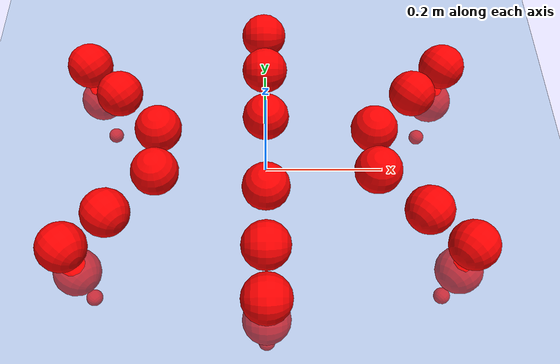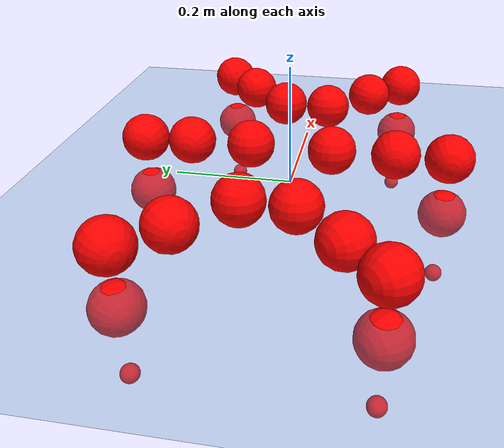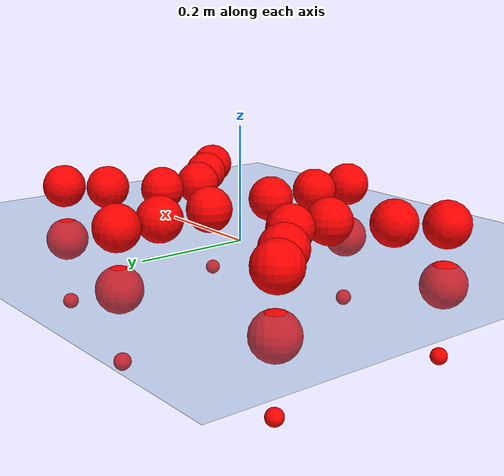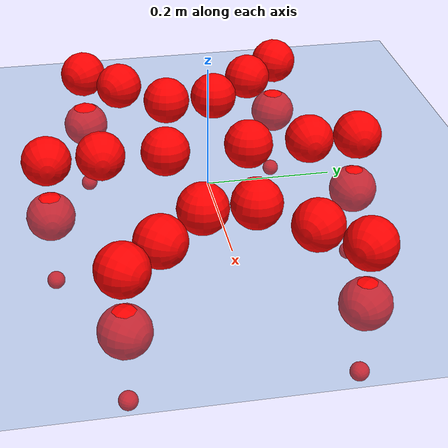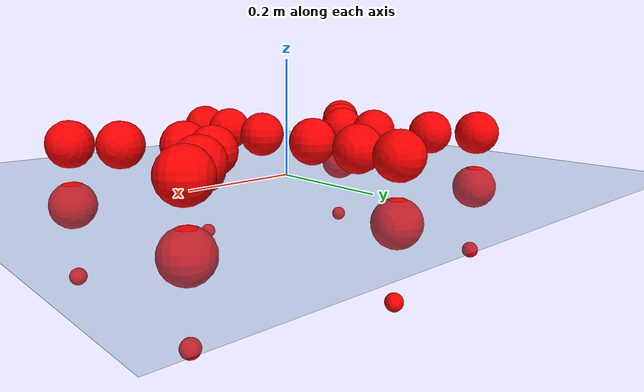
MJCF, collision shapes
<mujoco model="Golem">
  <compiler angle="radian" assetdir="assets" balanceinertia="true" inertiafromgeom="false"/>

  <option timestep="0.005" density="1.2" viscosity="2e-05"/>

  <size nkey="1"/>

  <visual>
    <quality shadowsize="8192"/>
    <map shadowclip="0.5"/>
  </visual>

  <default>
    <default class="/">
      <joint armature="0.01" damping="0.01" frictionloss="0.01"/>
      <geom contype="0" conaffinity="0" group="1" solref="-1000 -80"/>
      <site size="0.01 0.005 0.005" group="5"/>
      <general forcelimited="true" biastype="affine" gainprm="25" biasprm="0 -25 -0.5"/>
      <default class="visual">
        <geom type="mesh" group="2"/>
      </default>
      <default class="collision">
        <geom group="3"/>
      </default>
      <default class="foot">
        <geom size="0.01 0 0" condim="6" group="4" priority="1" solimp="0.015 1 0.01"/>
      </default>
      <default class="reward_collision_sphere">
        <geom group="5" rgba="1 0 0 1"/>
      </default>
    </default>
  </default>

  <asset>
    <texture type="skybox" colorspace="auto" name="//unnamed_texture_0" builtin="gradient" rgb1="0.95 0.95 0.95" rgb2="0.95 0.95 0.95" width="100" height="600"/>
    <texture type="2d" colorspace="auto" name="texplane" builtin="checker" rgb1="0.345 0.575 0.748" rgb2="0.345 0.575 0.748" markrgb="1 1 1" width="512" height="512"/>
    <material name="MatPlane" class="/" texture="texplane" texuniform="true" texrepeat="2 2" specular="0.9"/>
    <mesh name="body" class="/" file="body.stl" scale="0.001 0.001 0.001"/>
    <mesh name="coxa" class="/" file="coxa.stl" scale="0.001 0.001 0.001"/>
    <mesh name="femur" class="/" file="femur.stl" scale="0.001 0.001 0.001"/>
    <mesh name="tibia" class="/" file="tibia.stl" scale="0.001 0.001 0.001"/>
    <mesh name="tarsus" class="/" file="tarsus.stl" scale="0.001 0.001 0.001"/>
  </asset>

  <worldbody>
    <geom name="floor" class="/" size="100 100 0.125" type="plane" group="0" material="MatPlane"/>
    <light name="toplight_shadow" class="/" pos="0 0 5" dir="0.0990148 0.0990148 -0.990148" type="directional" ambient="0.04 0.04 0.04" diffuse="0.55 0.55 0.55" specular="0.12 0.12 0.12"/>
    <light name="toplight_fill" class="/" pos="0 0 5" dir="0.0990148 0.0990148 -0.990148" type="directional" castshadow="false" ambient="0.04 0.04 0.04" diffuse="0.3 0.3 0.3" specular="0.08 0.08 0.08"/>
    <body name="trunk" pos="0.000805036 -4.30444e-05 0.000869837" quat="1 -0.000100235 9.02162e-05 0.000201835">
      <inertial pos="-0.000463807 -0.000428315 -0.00402371" quat="0.999998 -0.00123032 -0.00157594 0.000791258" mass="3.55649" diaginertia="0.0205375 0.00275451 0.0112294"/>
      <joint name="//unnamed_joint_0" type="free"/>
      <geom name="//unnamed_geom_1" class="/" pos="0 0 0.0653289" quat="1 0 0 0" type="mesh" rgba="0.9 0.9 0.9 1" mesh="body"/>
      <site name="imu" class="/" pos="0.146169 0.000858299 0.106076" size="0.00982098"/>
      <camera name="track" class="/" pos="0 -1.54392 0" quat="0.707107 0.707107 0 0" mode="trackcom"/>
      <camera name="ego_camera" class="/" pos="0.149964 0 0.102076" quat="-0.5 -0.5 0.5 0.5"/>
      <body name="coxa_RR" pos="-0.204954 -0.0645907 0.0647321" quat="0.382515 0.000125457 7.63578e-05 -0.923949">
        <inertial pos="-5.15789e-05 0.000111785 0.000861369" quat="0.99999 -0.00117331 -0.00333385 0.00263766" mass="0.190981" diaginertia="0.0205633 0.002771 0.0111778"/>
        <joint name="coxa_joint_RR" class="/" pos="0 0 0" axis="0.0016363 -0.0061687 -0.99998" range="-3.12574 3.14576" armature="0.0101962" damping="0.00491927" frictionloss="0.0102706"/>
        <geom name="//unnamed_geom_2" class="/" type="mesh" rgba="0.2 0.2 0.2 1" mesh="coxa"/>
        <geom name="//unnamed_geom_3" class="reward_collision_sphere" size="0.0392839" pos="-0.0346071 0 0"/>
        <body name="femur_RR" pos="0.0683777 0.00152408 0.000200722" quat="0.499823 -0.499853 0.500268 0.500055">
          <inertial pos="0.000640885 0.000232836 0.000927467" quat="0.999997 0.000397223 0.00146282 -0.00190054" mass="0.189389" diaginertia="0.0202008 0.00272594 0.0110932"/>
          <joint name="femur_joint_RR" class="/" pos="0 0 0" axis="0.000681223 -0.000938224 -0.999999" stiffness="0.000145901" range="-3.12914 3.13756" armature="0.0097851" damping="0" frictionloss="0.0103006"/>
          <geom name="//unnamed_geom_4" class="/" type="mesh" rgba="0.9 0.9 0.9 1" mesh="femur"/>
          <geom name="//unnamed_geom_5" class="reward_collision_sphere" size="0.0392839"/>
          <body name="tibia_RR" pos="-0.000602169 -0.0829244 -0.000728105" quat="1.08779e-05 1 3.21971e-05 2.30341e-06">
            <inertial pos="-0.000718136 -0.00110745 -0.000289719" quat="1 0.000212134 0.000122928 -0.000126822" mass="0.187511" diaginertia="0.0203283 0.00273722 0.0110602"/>
            <joint name="tibia_joint_RR" class="/" pos="0 0 0" axis="0.00182941 -0.000775646 0.999998" range="-3.13913 3.13732" armature="0.00993681" damping="0.00400312" frictionloss="0.0102589"/>
            <geom name="//unnamed_geom_6" class="/" type="mesh" rgba="0.2 0.2 0.2 1" mesh="tibia"/>
            <geom name="//unnamed_geom_7" class="reward_collision_sphere" size="0.0392839"/>
            <body name="tarsus_RR" pos="0.100405 0.00013278 -0.000288024" quat="1 0.000102478 1.48628e-05 1.78055e-05">
              <inertial pos="0.0703891 0.000907155 0.000100905" quat="0.4993 0.502335 0.50176 0.496585" mass="0.187312" diaginertia="0.0204221 0.00272356 0.0111137"/>
              <joint name="tarsus_joint_RR" class="/" pos="0 0 0" axis="-0.000881768 0.000425924 1" range="-3.15642 3.15956" armature="0.00972401" damping="0.00021109" frictionloss="0.00975078"/>
              <geom name="//unnamed_geom_8" class="/" type="mesh" rgba="0.9 0.9 0.9 1" mesh="tarsus"/>
              <geom name="foot_1" class="foot" size="0.00946634" pos="0.1292 0 0" quat="0 -0.707107 0 0.707107"/>
              <geom name="//unnamed_geom_10" class="reward_collision_sphere" size="0.0392839"/>
              <geom name="//unnamed_geom_11" class="reward_collision_sphere" size="0.0147315" pos="0.124009 0 0"/>
              <site name="foot_1" class="foot" pos="0.1292 0 0" quat="0 -0.707107 0 0.707107" size="0.00982098"/>
            </body>
          </body>
        </body>
      </body>
      <body name="coxa_RM" pos="-0.000828752 -0.102931 0.0642289" quat="0.707328 -0.000129145 -0.000162962 -0.706885">
        <inertial pos="-2.68237e-05 0.00100643 -0.000381938" quat="0.999993 0.000830588 -0.00180911 -0.00301414" mass="0.189755" diaginertia="0.020405 0.00274215 0.0110547"/>
        <joint name="coxa_joint_RM" class="/" pos="0 0 0" axis="0.000423526 -0.000138184 -1" range="-3.14824 3.14723" armature="0.00986549" damping="0.00953599" frictionloss="0.00968022"/>
        <geom name="//unnamed_geom_12" class="/" type="mesh" rgba="0.2 0.2 0.2 1" mesh="coxa"/>
        <geom name="//unnamed_geom_13" class="reward_collision_sphere" size="0.0392839" pos="-0.0346071 0 0"/>
        <body name="femur_RM" pos="0.0679245 -0.000633399 0.00100447" quat="0.500014 -0.499888 0.500011 0.500088">
          <inertial pos="-0.000503633 0.000831702 -0.000982908" quat="1 0.000518363 0.00047792 0.000279455" mass="0.189004" diaginertia="0.0203476 0.00274284 0.0109712"/>
          <joint name="femur_joint_RM" class="/" pos="0 0 0" axis="-0.00197803 0.00320186 -0.999993" range="-3.13328 3.14586" armature="0.00951162" damping="0.00443414" frictionloss="0.00976701"/>
          <geom name="//unnamed_geom_14" class="/" type="mesh" rgba="0.9 0.9 0.9 1" mesh="femur"/>
          <geom name="//unnamed_geom_15" class="reward_collision_sphere" size="0.0392839"/>
          <body name="tibia_RM" pos="0.000542659 -0.0843433 0.000392417" quat="-0.000265733 1 0.000280116 5.84097e-05">
            <inertial pos="0.000203258 0.000351244 4.42981e-05" quat="1 -7.19869e-05 -0.000222094 7.21092e-06" mass="0.187963" diaginertia="0.0201118 0.00269466 0.011059"/>
            <joint name="tibia_joint_RM" class="/" pos="0 0 0" axis="0.00104106 -0.000116317 0.999999" range="-3.14756 3.13955" armature="0.00953351" damping="0" frictionloss="0.00947022"/>
            <geom name="//unnamed_geom_16" class="/" type="mesh" rgba="0.2 0.2 0.2 1" mesh="tibia"/>
            <geom name="//unnamed_geom_17" class="reward_collision_sphere" size="0.0392839"/>
            <body name="tarsus_RM" pos="0.101191 -0.000341822 0.000145734" quat="1 -0.000124418 -1.31337e-06 0.000185202">
              <inertial pos="0.0692216 0.000598399 -0.000590613" quat="0.499019 0.502515 0.499194 0.499263" mass="0.189154" diaginertia="0.0201499 0.00273501 0.0109421"/>
              <joint name="tarsus_joint_RM" class="/" pos="0 0 0" axis="0.000155313 -0.000244478 1" stiffness="0.00111732" range="-3.13931 3.12605" armature="0.00980211" damping="0.00557323" frictionloss="0.00966859"/>
              <geom name="//unnamed_geom_18" class="/" type="mesh" rgba="0.9 0.9 0.9 1" mesh="tarsus"/>
              <geom name="foot_2" class="foot" size="0.00978998" pos="0.1292 0 0" quat="0 -0.707107 0 0.707107"/>
              <geom name="//unnamed_geom_20" class="reward_collision_sphere" size="0.0392839"/>
              <geom name="//unnamed_geom_21" class="reward_collision_sphere" size="0.0147315" pos="0.124009 0 0"/>
              <site name="foot_2" class="foot" pos="0.1292 0 0" quat="0 -0.707107 0 0.707107" size="0.00982098"/>
            </body>
          </body>
        </body>
      </body>
      <body name="coxa_RF" pos="0.205543 -0.0646632 0.0649723" quat="0.924093 -0.000196416 0.000190267 -0.382166">
        <inertial pos="-0.000407897 -0.00125844 0.000799773" quat="1 -0.000289021 -0.000284542 6.0434e-05" mass="0.186808" diaginertia="0.0202294 0.00272686 0.0110212"/>
        <joint name="coxa_joint_RF" class="/" pos="0 0 0" axis="-0.00186095 0.000317044 -0.999998" range="-3.13805 3.12298" armature="0.00977612" damping="0" frictionloss="0.00972014"/>
        <geom name="//unnamed_geom_22" class="/" type="mesh" rgba="0.2 0.2 0.2 1" mesh="coxa"/>
        <geom name="//unnamed_geom_23" class="reward_collision_sphere" size="0.0392839" pos="-0.0346071 0 0"/>
        <body name="femur_RF" pos="0.0688364 0.0011502 -0.000523379" quat="0.499994 -0.499991 0.499984 0.500031">
          <inertial pos="0.000607595 8.09409e-05 -0.000319364" quat="1 -0.000415995 -0.000770032 -0.000251864" mass="0.188781" diaginertia="0.0203863 0.00267927 0.0109985"/>
          <joint name="femur_joint_RF" class="/" pos="0 0 0" axis="-0.000153138 0.000227581 -1" range="-3.13169 3.14651" armature="0.00980171" damping="0.00520634" frictionloss="0.0101358"/>
          <geom name="//unnamed_geom_24" class="/" type="mesh" rgba="0.9 0.9 0.9 1" mesh="femur"/>
          <geom name="//unnamed_geom_25" class="reward_collision_sphere" size="0.0392839"/>
          <body name="tibia_RF" pos="-0.00011626 -0.0845214 -0.000601135" quat="-6.02578e-05 1 8.63731e-05 0.000114783">
            <inertial pos="-0.000611379 0.000898783 -0.000185927" quat="0.999993 0.000819157 0.00355567 -3.85414e-05" mass="0.192878" diaginertia="0.0206082 0.00277172 0.0110917"/>
            <joint name="tibia_joint_RF" class="/" pos="0 0 0" axis="-0.00462747 -0.00182188 0.999988" range="-3.1382 3.1376" armature="0.0100552" damping="0.00378465" frictionloss="0.0098903"/>
            <geom name="//unnamed_geom_26" class="/" type="mesh" rgba="0.2 0.2 0.2 1" mesh="tibia"/>
            <geom name="//unnamed_geom_27" class="reward_collision_sphere" size="0.0392839"/>
            <body name="tarsus_RF" pos="0.101356 0.00102951 -0.00102006" quat="1 0.000240956 0.000108752 -0.000339875">
              <inertial pos="0.0682796 -0.000117279 -0.000555642" quat="0.499838 0.499778 0.500043 0.50034" mass="0.188335" diaginertia="0.0204604 0.00275915 0.0109873"/>
              <joint name="tarsus_joint_RF" class="/" pos="0 0 0" axis="-6.15625e-05 -2.57028e-05 1" stiffness="0.00209652" range="-3.12881 3.13779" armature="0.00979333" damping="0.00508941" frictionloss="0.00978953"/>
              <geom name="//unnamed_geom_28" class="/" type="mesh" rgba="0.9 0.9 0.9 1" mesh="tarsus"/>
              <geom name="foot_3" class="foot" size="0.0101438" pos="0.1292 0 0" quat="0 -0.707107 0 0.707107"/>
              <geom name="//unnamed_geom_30" class="reward_collision_sphere" size="0.0392839"/>
              <geom name="//unnamed_geom_31" class="reward_collision_sphere" size="0.0147315" pos="0.124009 0 0"/>
              <site name="foot_3" class="foot" pos="0.1292 0 0" quat="0 -0.707107 0 0.707107" size="0.00982098"/>
            </body>
          </body>
        </body>
      </body>
      <body name="coxa_LR" pos="-0.204713 0.0662607 0.0665718" quat="0.383 -0.000111262 -3.55934e-05 0.923748">
        <inertial pos="-0.000256833 -0.000634341 0.000962007" quat="1 -2.56736e-06 -1.2112e-05 9.55949e-06" mass="0.188496" diaginertia="0.0203331 0.00274094 0.0109791"/>
        <joint name="coxa_joint_LR" class="/" pos="0 0 0" axis="0.002387 0.000915017 -0.999997" range="-3.12352 3.13738" armature="0.0101032" damping="0.0060561" frictionloss="0.00957144"/>
        <geom name="//unnamed_geom_32" class="/" type="mesh" rgba="0.2 0.2 0.2 1" mesh="coxa"/>
        <geom name="//unnamed_geom_33" class="reward_collision_sphere" size="0.0392839" pos="-0.0346071 0 0"/>
        <body name="femur_LR" pos="0.0696366 -0.00176768 -0.00237287" quat="0.500092 -0.499895 0.499983 0.50003">
          <inertial pos="-0.000105343 0.000517561 -0.000840314" quat="0.999999 -0.00141399 0.000126638 1.9875e-06" mass="0.186524" diaginertia="0.0204608 0.00273242 0.0110413"/>
          <joint name="femur_joint_LR" class="/" pos="0 0 0" axis="0.000335384 -0.00138103 0.999999" stiffness="0.000705805" range="-3.15778 3.13273" armature="0.0096236" damping="0.00796115" frictionloss="0.00984852"/>
          <geom name="//unnamed_geom_34" class="/" type="mesh" rgba="0.9 0.9 0.9 1" mesh="femur"/>
          <geom name="//unnamed_geom_35" class="reward_collision_sphere" size="0.0392839"/>
          <body name="tibia_LR" pos="-0.000584371 -0.0848986 -0.00211681" quat="5.01258e-05 1 -8.19707e-05 0.000363279">
            <inertial pos="-0.00103594 1.08519e-05 -0.000311507" quat="1 0.000431648 0.000145103 -0.000355918" mass="0.188757" diaginertia="0.020569 0.00274055 0.0112286"/>
            <joint name="tibia_joint_LR" class="/" pos="0 0 0" axis="0.0036747 -0.000574853 -0.999993" range="-3.13096 3.14271" armature="0.00993293" damping="0.00194114" frictionloss="0.00992531"/>
            <geom name="//unnamed_geom_36" class="/" type="mesh" rgba="0.2 0.2 0.2 1" mesh="tibia"/>
            <geom name="//unnamed_geom_37" class="reward_collision_sphere" size="0.0392839"/>
            <body name="tarsus_LR" pos="0.101595 0.000602271 0.00197216" quat="1 -4.93955e-05 0.000132775 -0.000182844">
              <inertial pos="0.0697046 0.000799381 0.0002028" quat="0.499804 0.500165 0.499776 0.500255" mass="0.188599" diaginertia="0.0203871 0.00273218 0.0109461"/>
              <joint name="tarsus_joint_LR" class="/" pos="0 0 0" axis="-0.00035405 -0.000165041 -1" range="-3.13552 3.13356" armature="0.00952447" damping="0.0265029" frictionloss="0.00986847"/>
              <geom name="//unnamed_geom_38" class="/" type="mesh" rgba="0.9 0.9 0.9 1" mesh="tarsus"/>
              <geom name="foot_4" class="foot" size="0.00956876" pos="0.1292 0 0" quat="0.707107 0 -0.707107 0"/>
              <geom name="//unnamed_geom_40" class="reward_collision_sphere" size="0.0392839"/>
              <geom name="//unnamed_geom_41" class="reward_collision_sphere" size="0.0147315" pos="0.124009 0 0"/>
              <site name="foot_4" class="foot" pos="0.1292 0 0" quat="0.707107 0 -0.707107 0" size="0.00982098"/>
            </body>
          </body>
        </body>
      </body>
      <body name="coxa_LM" pos="-0.000497648 0.10042 0.0651978" quat="0.707118 6.02301e-06 6.91977e-05 0.707096">
        <inertial pos="0.000360551 5.01939e-05 0.000449528" quat="0.999999 0.000686319 -0.000577626 0.00107557" mass="0.189703" diaginertia="0.0207179 0.00274093 0.0110478"/>
        <joint name="coxa_joint_LM" class="/" pos="0 0 0" axis="0.00088636 0.00225297 -0.999997" range="-3.13432 3.13681" armature="0.00972269" damping="0" frictionloss="0.010267"/>
        <geom name="//unnamed_geom_42" class="/" type="mesh" rgba="0.2 0.2 0.2 1" mesh="coxa"/>
        <geom name="//unnamed_geom_43" class="reward_collision_sphere" size="0.0392839" pos="-0.0346071 0 0"/>
        <body name="femur_LM" pos="0.0656488 0.00126751 -0.000611863" quat="0.500011 -0.49998 0.500006 0.500003">
          <inertial pos="-0.00102182 -0.000337155 0.000933579" quat="1 0.000104951 -0.000113317 0.000343919" mass="0.188223" diaginertia="0.01994 0.00271834 0.010961"/>
          <joint name="femur_joint_LM" class="/" pos="0 0 0" axis="-0.00785532 0.000535006 0.999969" range="-3.13186 3.15532" armature="0.00972673" damping="0" frictionloss="0.00983434"/>
          <geom name="//unnamed_geom_44" class="/" type="mesh" rgba="0.9 0.9 0.9 1" mesh="femur"/>
          <geom name="//unnamed_geom_45" class="reward_collision_sphere" size="0.0392839"/>
          <body name="tibia_LM" pos="0.000751115 -0.0807765 0.0013132" quat="-3.62635e-05 1 -1.70418e-05 3.41408e-06">
            <inertial pos="-0.000469333 -0.000918708 -0.000124696" quat="1 4.95393e-05 -0.000184074 0.000386798" mass="0.190021" diaginertia="0.0204014 0.00272257 0.0109205"/>
            <joint name="tibia_joint_LM" class="/" pos="0 0 0" axis="0.000745985 0.00142561 -0.999999" range="-3.13718 3.15428" armature="0.0101926" damping="0" frictionloss="0.00923639"/>
            <geom name="//unnamed_geom_46" class="/" type="mesh" rgba="0.2 0.2 0.2 1" mesh="tibia"/>
            <geom name="//unnamed_geom_47" class="reward_collision_sphere" size="0.0392839"/>
            <body name="tarsus_LM" pos="0.101602 -0.000807472 -0.000279969" quat="1 -5.9358e-05 9.08392e-05 4.90972e-05">
              <inertial pos="0.0695555 -6.82116e-06 0.000860288" quat="0.500338 0.500517 0.499669 0.499475" mass="0.190035" diaginertia="0.0207282 0.00274099 0.0112438"/>
              <joint name="tarsus_joint_LM" class="/" pos="0 0 0" axis="0.000174201 -0.000105469 -1" range="-3.15081 3.13797" armature="0.00977616" damping="0" frictionloss="0.00982002"/>
              <geom name="//unnamed_geom_48" class="/" type="mesh" rgba="0.9 0.9 0.9 1" mesh="tarsus"/>
              <geom name="foot_5" class="foot" size="0.0103836" pos="0.1292 0 0" quat="0.707107 0 -0.707107 0"/>
              <geom name="//unnamed_geom_50" class="reward_collision_sphere" size="0.0392839"/>
              <geom name="//unnamed_geom_51" class="reward_collision_sphere" size="0.0147315" pos="0.124009 0 0"/>
              <site name="foot_5" class="foot" pos="0.1292 0 0" quat="0.707107 0 -0.707107 0" size="0.00982098"/>
            </body>
          </body>
        </body>
      </body>
      <body name="coxa_LF" pos="0.205311 0.0641614 0.065161" quat="0.923888 -4.81829e-05 6.35043e-05 0.382664">
        <inertial pos="0.000114447 -0.000748306 3.0826e-06" quat="1 5.38169e-05 0.000442135 7.70695e-05" mass="0.192231" diaginertia="0.0207626 0.00276144 0.0111568"/>
        <joint name="coxa_joint_LF" class="/" pos="0 0 0" axis="0.00191585 0.00819145 -0.999965" range="-3.15199 3.13624" armature="0.00938182" damping="0" frictionloss="0.00995333"/>
        <geom name="//unnamed_geom_52" class="/" type="mesh" rgba="0.2 0.2 0.2 1" mesh="coxa"/>
        <geom name="//unnamed_geom_53" class="reward_collision_sphere" size="0.0392839" pos="-0.0346071 0 0"/>
        <body name="femur_LF" pos="0.0680786 0.000952375 -0.000256959" quat="0.500127 -0.499951 0.499797 0.500125">
          <inertial pos="0.000278021 -0.000918015 -4.64995e-05" quat="0.999998 -0.00017562 -0.00179856 -2.8782e-05" mass="0.187206" diaginertia="0.02013 0.00271497 0.0110326"/>
          <joint name="femur_joint_LF" class="/" pos="0 0 0" axis="-0.00308884 -0.00133907 0.999994" range="-3.14858 3.13969" armature="0.00940833" damping="0.000268386" frictionloss="0.00991889"/>
          <geom name="//unnamed_geom_54" class="/" type="mesh" rgba="0.9 0.9 0.9 1" mesh="femur"/>
          <geom name="//unnamed_geom_55" class="reward_collision_sphere" size="0.0392839"/>
          <body name="tibia_LF" pos="0.000111598 -0.0829833 -7.07652e-06" quat="2.69304e-05 1 6.87342e-06 1.51715e-05">
            <inertial pos="0.000466649 0.00060606 0.00103395" quat="1 -0.000675091 -0.000448429 -0.000232138" mass="0.189075" diaginertia="0.0203199 0.00270476 0.0111906"/>
            <joint name="tibia_joint_LF" class="/" pos="0 0 0" axis="0.00664329 -0.0015734 -0.999977" range="-3.15553 3.13059" armature="0.00958717" damping="0.00414314" frictionloss="0.0102513"/>
            <geom name="//unnamed_geom_56" class="/" type="mesh" rgba="0.2 0.2 0.2 1" mesh="tibia"/>
            <geom name="//unnamed_geom_57" class="reward_collision_sphere" size="0.0392839"/>
            <body name="tarsus_LF" pos="0.102345 -0.000289703 -0.000156229" quat="1 -4.50601e-05 1.44242e-05 8.87265e-05">
              <inertial pos="0.0704081 -9.44111e-05 0.000386219" quat="0.500457 0.498754 0.500425 0.500362" mass="0.189112" diaginertia="0.020401 0.00273139 0.0111916"/>
              <joint name="tarsus_joint_LF" class="/" pos="0 0 0" axis="0.000263921 0.000155499 -1" range="-3.13561 3.12674" armature="0.00932911" damping="0.0115758" frictionloss="0.00937309"/>
              <geom name="//unnamed_geom_58" class="/" type="mesh" rgba="0.9 0.9 0.9 1" mesh="tarsus"/>
              <geom name="foot_6" class="foot" size="0.00954278" pos="0.1292 0 0" quat="0.707107 0 -0.707107 0"/>
              <geom name="//unnamed_geom_60" class="reward_collision_sphere" size="0.0392839"/>
              <geom name="//unnamed_geom_61" class="reward_collision_sphere" size="0.0147315" pos="0.124009 0 0"/>
              <site name="foot_6" class="foot" pos="0.1292 0 0" quat="0.707107 0 -0.707107 0" size="0.00982098"/>
            </body>
          </body>
        </body>
      </body>
    </body>
  </worldbody>

  <contact>
    <pair class="/" geom1="floor" geom2="foot_1" name="//unnamed_contact_0"/>
    <pair class="/" geom1="floor" geom2="foot_2" name="//unnamed_contact_1"/>
    <pair class="/" geom1="floor" geom2="foot_3" name="//unnamed_contact_2"/>
    <pair class="/" geom1="floor" geom2="foot_4" name="//unnamed_contact_3"/>
    <pair class="/" geom1="floor" geom2="foot_5" name="//unnamed_contact_4"/>
    <pair class="/" geom1="floor" geom2="foot_6" name="//unnamed_contact_5"/>
  </contact>

  <actuator>
    <general name="coxa_joint_RR" class="/" joint="coxa_joint_RR" forcerange="-7.05935 7.05935" gainprm="23.7335" biasprm="0 -23.7335 -0.505724"/>
    <general name="femur_joint_RR" class="/" joint="femur_joint_RR" forcerange="-7.21908 7.21908" gainprm="23.7335" biasprm="0 -23.7335 -0.505724"/>
    <general name="tibia_joint_RR" class="/" joint="tibia_joint_RR" forcerange="-7.15401 7.15401" gainprm="23.7335" biasprm="0 -23.7335 -0.505724"/>
    <general name="tarsus_joint_RR" class="/" joint="tarsus_joint_RR" forcerange="-7.14622 7.14622" gainprm="23.7335" biasprm="0 -23.7335 -0.505724"/>
    <general name="coxa_joint_RM" class="/" joint="coxa_joint_RM" forcerange="-7.20999 7.20999" gainprm="23.7335" biasprm="0 -23.7335 -0.505724"/>
    <general name="femur_joint_RM" class="/" joint="femur_joint_RM" forcerange="-7.2178 7.2178" gainprm="23.7335" biasprm="0 -23.7335 -0.505724"/>
    <general name="tibia_joint_RM" class="/" joint="tibia_joint_RM" forcerange="-7.15332 7.15332" gainprm="23.7335" biasprm="0 -23.7335 -0.505724"/>
    <general name="tarsus_joint_RM" class="/" joint="tarsus_joint_RM" forcerange="-7.32709 7.32709" gainprm="23.7335" biasprm="0 -23.7335 -0.505724"/>
    <general name="coxa_joint_RF" class="/" joint="coxa_joint_RF" forcerange="-7.22581 7.22581" gainprm="23.7335" biasprm="0 -23.7335 -0.505724"/>
    <general name="femur_joint_RF" class="/" joint="femur_joint_RF" forcerange="-7.18721 7.18721" gainprm="23.7335" biasprm="0 -23.7335 -0.505724"/>
    <general name="tibia_joint_RF" class="/" joint="tibia_joint_RF" forcerange="-7.16645 7.16645" gainprm="23.7335" biasprm="0 -23.7335 -0.505724"/>
    <general name="tarsus_joint_RF" class="/" joint="tarsus_joint_RF" forcerange="-7.0826 7.0826" gainprm="23.7335" biasprm="0 -23.7335 -0.505724"/>
    <general name="coxa_joint_LR" class="/" joint="coxa_joint_LR" forcerange="-7.23038 7.23038" gainprm="23.7335" biasprm="0 -23.7335 -0.505724"/>
    <general name="femur_joint_LR" class="/" joint="femur_joint_LR" forcerange="-7.2071 7.2071" gainprm="23.7335" biasprm="0 -23.7335 -0.505724"/>
    <general name="tibia_joint_LR" class="/" joint="tibia_joint_LR" forcerange="-7.29438 7.29438" gainprm="23.7335" biasprm="0 -23.7335 -0.505724"/>
    <general name="tarsus_joint_LR" class="/" joint="tarsus_joint_LR" forcerange="-7.15747 7.15747" gainprm="23.7335" biasprm="0 -23.7335 -0.505724"/>
    <general name="coxa_joint_LM" class="/" joint="coxa_joint_LM" forcerange="-7.15132 7.15132" gainprm="23.7335" biasprm="0 -23.7335 -0.505724"/>
    <general name="femur_joint_LM" class="/" joint="femur_joint_LM" forcerange="-7.38491 7.38491" gainprm="23.7335" biasprm="0 -23.7335 -0.505724"/>
    <general name="tibia_joint_LM" class="/" joint="tibia_joint_LM" forcerange="-7.15791 7.15791" gainprm="23.7335" biasprm="0 -23.7335 -0.505724"/>
    <general name="tarsus_joint_LM" class="/" joint="tarsus_joint_LM" forcerange="-6.9247 6.9247" gainprm="23.7335" biasprm="0 -23.7335 -0.505724"/>
    <general name="coxa_joint_LF" class="/" joint="coxa_joint_LF" forcerange="-7.17391 7.17391" gainprm="23.7335" biasprm="0 -23.7335 -0.505724"/>
    <general name="femur_joint_LF" class="/" joint="femur_joint_LF" forcerange="-6.98637 6.98637" gainprm="23.7335" biasprm="0 -23.7335 -0.505724"/>
    <general name="tibia_joint_LF" class="/" joint="tibia_joint_LF" forcerange="-7.1527 7.1527" gainprm="23.7335" biasprm="0 -23.7335 -0.505724"/>
    <general name="tarsus_joint_LF" class="/" joint="tarsus_joint_LF" forcerange="-6.85997 6.85997" gainprm="23.7335" biasprm="0 -23.7335 -0.505724"/>
  </actuator>

  <sensor>
    <gyro site="imu" name="imu_angular_velocity"/>
    <velocimeter site="imu" name="imu_linear_velocity"/>
    <framelinvel objtype="site" objname="foot_1" name="foot_1_global_linear_velocity"/>
    <framelinvel objtype="site" objname="foot_2" name="foot_2_global_linear_velocity"/>
    <framelinvel objtype="site" objname="foot_3" name="foot_3_global_linear_velocity"/>
    <framelinvel objtype="site" objname="foot_4" name="foot_4_global_linear_velocity"/>
    <framelinvel objtype="site" objname="foot_5" name="foot_5_global_linear_velocity"/>
    <framelinvel objtype="site" objname="foot_6" name="foot_6_global_linear_velocity"/>
  </sensor>

  <keyframe>
    <key name="home" qpos="0 0 0.1457 1 0 0 0 0 0 0 0 0 0 0 0 0 0 0 0 0 0 0 0 0 0 0 0 0 0 0 0"/>
  </keyframe>
</mujoco>
